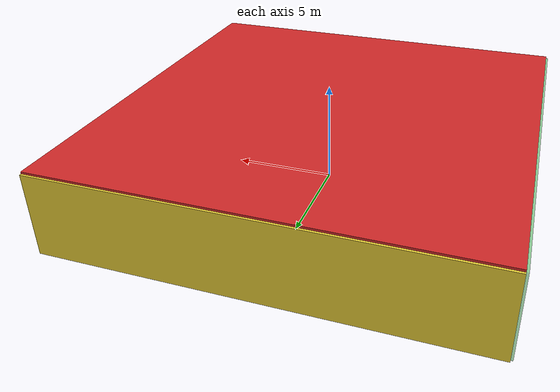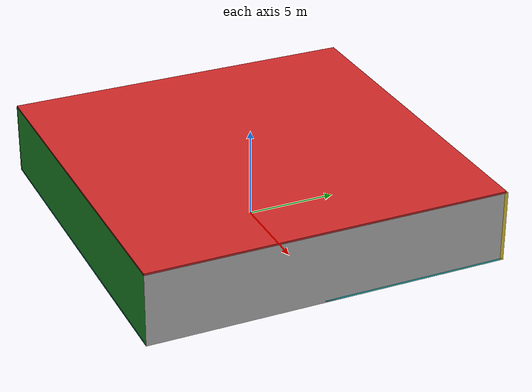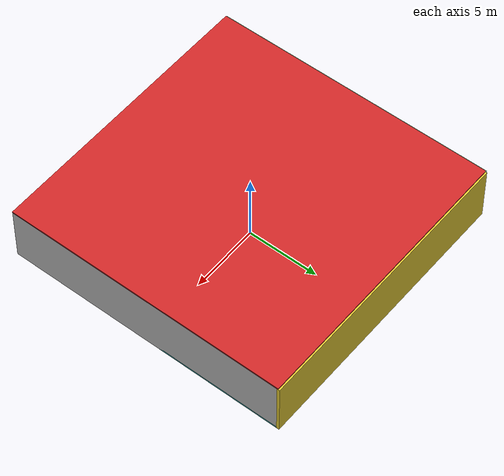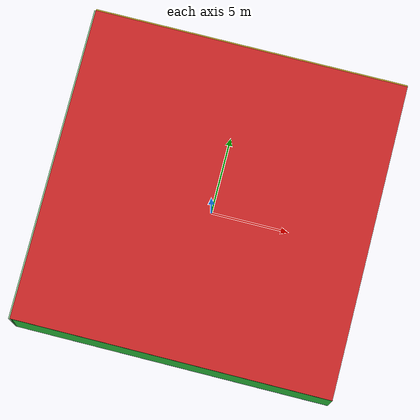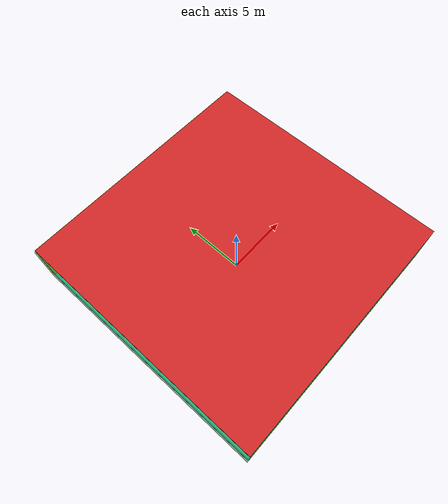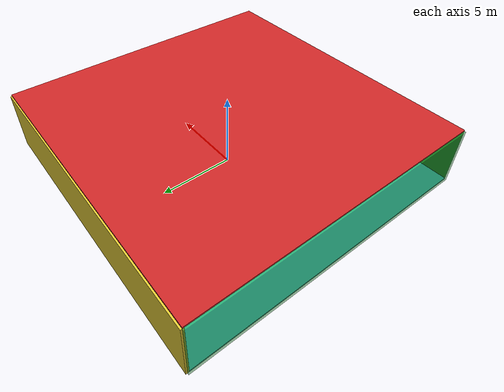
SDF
<sdf version="1.4">
 <world name="default">
  <physics type="ode">
   <max_step_size>0.001</max_step_size>
   <real_time_factor>1</real_time_factor>
   <real_time_update_rate>1000</real_time_update_rate>
   <gravity>0 0 -9.8</gravity>
  </physics>
  <scene><ambient>0.4 0.4 0.4 1</ambient><background>0.7 0.7 0.7 1</background><shadows>1</shadows></scene>
  <model name="Surrounding">
   <static>1</static>
   <link name="Ceiling">
    <collision name="Ceiling_Collision"><geometry><box><size>20 20 0.1</size></box></geometry></collision>
    <visual name="Ceiling_Visual">
     <geometry><box><size>20 20 0.1</size></box></geometry>
     <material>
      <script><uri>file://media/materials/scripts/gazebo.material</uri><name>Gazebo/RedGlow</name></script>
     </material>
    </visual>
    <pose>0 0 4.05 0 0 0</pose>
   </link>
   <link name="Wall_South">
    <collision name="Wall_South_Collision">
     <geometry><box><size>20 0 4</size></box></geometry>
     <pose>0 0 2 0 -0 0</pose>
    </collision>
    <visual name="Wall_South_Visual">
     <pose>0 0 2 0 -0 0</pose>
     <geometry><box><size>20 0 4</size></box></geometry>
     <material>
      <script><uri>file://media/materials/scripts/gazebo.material</uri><name>Gazebo/Green</name></script>
     </material>
    </visual>
    <velocity_decay><linear>0</linear><angular>0</angular></velocity_decay>
    <pose>0 -10 0 0 -0 0</pose>
   </link>
   <link name="Wall_East">
    <collision name="Wall_21_Collision">
     <geometry><box><size>20 0 4</size></box></geometry>
     <pose>0 0 2 0 -0 0</pose>
    </collision>
    <visual name="Wall_21_Visual">
     <pose>0 0 2 0 -0 0</pose>
     <geometry><box><size>20 0 4</size></box></geometry>
     <material>
      <script><uri>file://media/materials/scripts/gazebo.material</uri><name>Gazebo/JointAnchor</name></script>
     </material>
    </visual>
    <velocity_decay><linear>0</linear><angular>0</angular></velocity_decay>
    <pose>10 0 0 0 -0 1.5708</pose>
   </link>
   <link name="Wall_North">
    <collision name="Wall_22_Collision">
     <geometry><box><size>20 0.2 4</size></box></geometry>
     <pose>0 0 2 0 -0 0</pose>
    </collision>
    <visual name="Wall_22_Visual">
     <pose>0 0 2 0 -0 0</pose>
     <geometry><box><size>20 0.2 4</size></box></geometry>
     <material>
      <script><uri>file://media/materials/scripts/gazebo.material</uri><name>Gazebo/ZincYellow</name></script>
     </material>
    </visual>
    <velocity_decay><linear>0</linear><angular>0</angular></velocity_decay>
    <pose>0 10 0 0 -0 0</pose>
   </link>
   <link name="Wall_West">
    <collision name="Wall_23_Collision">
     <geometry><box><size>20 0.2 4</size></box></geometry>
     <pose>0 0 2 0 -0 0</pose>
    </collision>
    <visual name="Wall_23_Visual">
     <pose>0 0 2 0 -0 0</pose>
     <geometry><box><size>20 0.2 4</size></box></geometry>
     <material>
      <script><uri>file://media/materials/scripts/gazebo.material</uri><name>Gazebo/GreenTransparent</name></script>
     </material>
    </visual>
    <velocity_decay><linear>0</linear><angular>0</angular></velocity_decay>
    <pose>-10 0 0 0 0 -1.5708</pose>
   </link>
   <link name="Ground_link">
    <collision name="collision">
     <pose>0 0 .05 0 -0 0</pose>
     <geometry><box><size>20 20 0.1</size></box></geometry>
    </collision>
    <visual name="visual">
     <pose>0 0 .05 0 -0 0</pose>
     <geometry><box><size>20 20 0.1</size></box></geometry>
     <material>
      <script><uri>file://media/materials/scripts/gazebo.material</uri><name>Gazebo/Turquoise</name></script>
     </material>
    </visual>
   </link>
   <static>1</static>
  </model>
  <spherical_coordinates>
   <surface_model>EARTH_WGS84</surface_model>
   <latitude_deg>0</latitude_deg>
   <longitude_deg>0</longitude_deg>
   <elevation>0</elevation>
   <heading_deg>0</heading_deg>
  </spherical_coordinates>
  <light name="lightball_0" type="diffuse">
   <diffuse>0.8 0.8 0.8 1</diffuse>
   <specular>0.2 0.2 0.2 1</specular>
   <attenuation>
    <range>100</range>
    <constant>0.7</constant>
    <linear>0.01</linear>
    <quadratic>0.001</quadratic>
   </attenuation>
   <direction>-0.5 0.1 -0.9</direction>
   <pose>-5.93039984031 -6.88065926501 3.84212667301 0 0 0</pose>
  </light>
  <light name="lightball_1" type="diffuse">
   <diffuse>0.8 0.8 0.8 1</diffuse>
   <specular>0.2 0.2 0.2 1</specular>
   <attenuation>
    <range>100</range>
    <constant>0.7</constant>
    <linear>0.01</linear>
    <quadratic>0.001</quadratic>
   </attenuation>
   <direction>-0.5 0.1 -0.9</direction>
   <pose>-1.2824591004 2.08895608393 1.60332660058 0 0 0</pose>
  </light>
  <light name="lightball_2" type="diffuse">
   <diffuse>0.8 0.8 0.8 1</diffuse>
   <specular>0.2 0.2 0.2 1</specular>
   <attenuation>
    <range>100</range>
    <constant>0.7</constant>
    <linear>0.01</linear>
    <quadratic>0.001</quadratic>
   </attenuation>
   <direction>-0.5 0.1 -0.9</direction>
   <pose>-2.23347430771 1.89316156972 2.16076854855 0 0 0</pose>
  </light>
  <light name="lightball_3" type="diffuse">
   <diffuse>0.8 0.8 0.8 1</diffuse>
   <specular>0.2 0.2 0.2 1</specular>
   <attenuation>
    <range>100</range>
    <constant>0.7</constant>
    <linear>0.01</linear>
    <quadratic>0.001</quadratic>
   </attenuation>
   <direction>-0.5 0.1 -0.9</direction>
   <pose>5.26963133928 -0.240419160963 2.8096356366 0 0 0</pose>
  </light>
  <include><uri>model://cabinet</uri><pose>1.64574221451 -1.02447735689 0 0 0 1.77230267068</pose></include>
  <include>
   <uri>model://textured_shapes</uri>
   <pose>2.17629267591 7.09898535822 0 0 0 0.965149008588</pose>
  </include>
  <include><uri>model://cabinet</uri><pose>5.62313226205 5.09029732728 0 0 0 3.01904622404</pose></include>
 </world>
</sdf>

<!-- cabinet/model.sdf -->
<sdf version="1.5">
  <model name="cabinet">
    <static>true</static>
    <link name="cabinet_bottom_plate">
      <inertial>
        <pose>0 0 -1 0 0 0</pose>
        <inertia>
          <ixx>2.050000</ixx>
          <ixy>0</ixy>
          <ixz>0</ixz>
          <iyy>2.050000</iyy>
          <iyz>0</iyz>
          <izz>2.050000</izz>
        </inertia>
        <mass>25.000000</mass>
      </inertial>
      <collision name="cabinet_bottom_plate_geom">
        <pose>0 0 0.010000 0 0 0</pose>
        <geometry>
          <box>
            <size>0.450000 0.450000 0.020000</size>
          </box>
        </geometry>
      </collision>
      <visual name="cabinet_bottom_plate_geom_visual">
        <pose>0 0 0.010000 0 0 0</pose>
        <geometry>
          <box>
            <size>0.450000 0.450000 0.020000</size>
          </box>
        </geometry>
        <material>
          <script>
            <uri>model://media/materials/scripts/gazebo.material</uri>
            <name>Gazebo/Wood</name>
          </script>
        </material>
      </visual>
      <collision name="cabinet_bottom_plate_geom_cabinet_back_plate">
        <pose>0.235000 0 0.510000 0 0 0</pose>
        <geometry>
          <box>
            <size>0.020000 0.450000 1.020000</size>
          </box>
        </geometry>
      </collision>
      <visual name="cabinet_bottom_plate_geom_cabinet_back_plate_visual">
        <pose>0.235000 0 0.510000 0 0 0</pose>
        <geometry>
          <box>
            <size>0.020000 0.450000 1.020000</size>
          </box>
        </geometry>
        <material>
          <script>
            <uri>model://media/materials/scripts/gazebo.material</uri>
            <name>Gazebo/Wood</name>
          </script>
        </material>
      </visual>
      <collision name="cabinet_bottom_plate_geom_cabinet_left_plate">
        <pose>0 0.235000 0.510000 0 0 0</pose>
        <geometry>
          <box>
            <size>0.450000 0.020000 1.020000</size>
          </box>
        </geometry>
      </collision>
      <visual name="cabinet_bottom_plate_geom_cabinet_left_plate_visual">
        <pose>0 0.235000 0.510000 0 0 0</pose>
        <geometry>
          <box>
            <size>0.450000 0.020000 1.020000</size>
          </box>
        </geometry>
        <material>
          <script>
            <uri>model://media/materials/scripts/gazebo.material</uri>
            <name>Gazebo/Wood</name>
          </script>
        </material>
      </visual>
      <collision name="cabinet_bottom_plate_geom_cabinet_middle_plate">
        <pose>0 0 0.510000 0 0 0</pose>
        <geometry>
          <box>
            <size>0.450000 0.450000 0.020000</size>
          </box>
        </geometry>
      </collision>
      <visual name="cabinet_bottom_plate_geom_cabinet_middle_plate_visual">
        <pose>0 0 0.510000 0 0 0</pose>
        <geometry>
          <box>
            <size>0.450000 0.450000 0.020000</size>
          </box>
        </geometry>
        <material>
          <script>
            <uri>model://media/materials/scripts/gazebo.material</uri>
            <name>Gazebo/Wood</name>
          </script>
        </material>
      </visual>
      <collision name="cabinet_bottom_plate_geom_cabinet_right_plate">
        <pose>0 -0.235000 0.510000 0 0 0</pose>
        <geometry>
          <box>
            <size>0.450000 0.020000 1.020000</size>
          </box>
        </geometry>
      </collision>
      <visual name="cabinet_bottom_plate_geom_cabinet_right_plate_visual">
        <pose>0 -0.235000 0.510000 0 0 0</pose>
        <geometry>
          <box>
            <size>0.450000 0.020000 1.020000</size>
          </box>
        </geometry>
        <material>
          <script>
            <uri>model://media/materials/scripts/gazebo.material</uri>
            <name>Gazebo/Wood</name>
          </script>
        </material>
      </visual>
      <collision name="cabinet_bottom_plate_geom_cabinet_top_plate">
        <pose>0 0 1.010000 0 0 0</pose>
        <geometry>
          <box>
            <size>0.450000 0.450000 0.020000</size>
          </box>
        </geometry>
      </collision>
      <visual name="cabinet_bottom_plate_geom_cabinet_top_plate_visual">
        <pose>0 0 1.010000 0 0 0</pose>
        <geometry>
          <box>
            <size>0.450000 0.450000 0.020000</size>
          </box>
        </geometry>
        <material>
          <script>
            <uri>model://media/materials/scripts/gazebo.material</uri>
            <name>Gazebo/Wood</name>
          </script>
        </material>
      </visual>
    </link>
  </model>
</sdf>

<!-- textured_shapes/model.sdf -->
<sdf version="1.6">
  <model name="textured_shapes">
    <pose>0 0 0.5 0 0 0</pose>
    <link name="box">
      <pose>0 -1.5 0 0 0 0</pose>
      <collision name="collision">
        <geometry>
          <box>
            <size>1 1 1</size>
          </box>
        </geometry>
      </collision>
      <visual name="visual">
        <geometry>
          <box>
            <size>1 1 1</size>
          </box>
        </geometry>
        <material>
          <script>
            <uri>model://../model_source/models/textured_shapes/materials/scripts</uri>
            <uri>model://../model_source/models/textured_shapes/materials/textures</uri>
            <name>TexturedShape/Squares</name>
          </script>
        </material>
      </visual>
    </link>
    <link name="sphere">
      <collision name="collision">
        <geometry>
          <sphere>
            <radius>0.5</radius>
          </sphere>
        </geometry>
      </collision>
      <visual name="visual">
        <geometry>
          <sphere>
            <radius>0.5</radius>
          </sphere>
        </geometry>
        <material>
          <script>
            <uri>model://../model_source/models/textured_shapes/materials/scripts</uri>
            <uri>model://../model_source/models/textured_shapes/materials/textures</uri>
            <name>TexturedShape/Squares</name>
          </script>
        </material>
      </visual>
    </link>
    <link name="cylinder">
      <pose>0 1.5 0 0 0 0</pose>
      <collision name="collision">
        <geometry>
          <cylinder>
            <radius>0.5</radius>
            <length>1</length>
          </cylinder>
        </geometry>
      </collision>
      <visual name="visual">
        <geometry>
          <cylinder>
            <radius>0.5</radius>
            <length>1</length>
          </cylinder>
        </geometry>
        <material>
          <script>
            <uri>model://../model_source/models/textured_shapes/materials/scripts</uri>
            <uri>model://../model_source/models/textured_shapes/materials/textures</uri>
            <name>TexturedShape/Squares</name>
          </script>
        </material>
      </visual>
    </link>
  </model>
</sdf>
